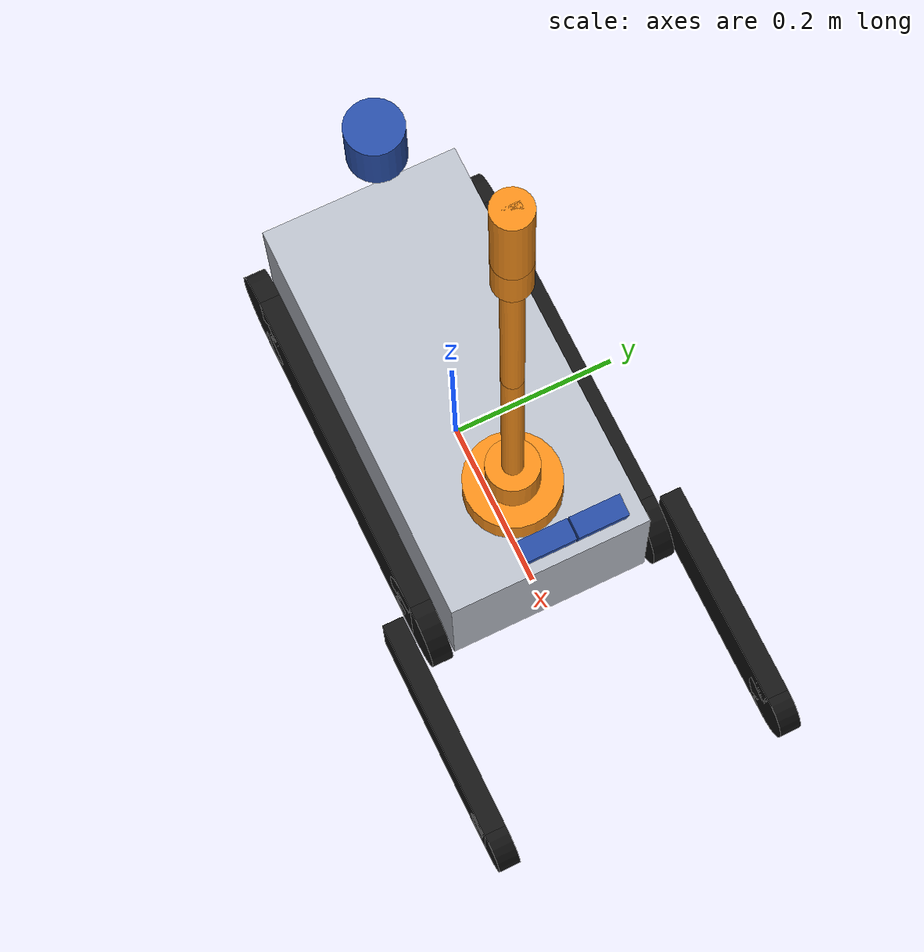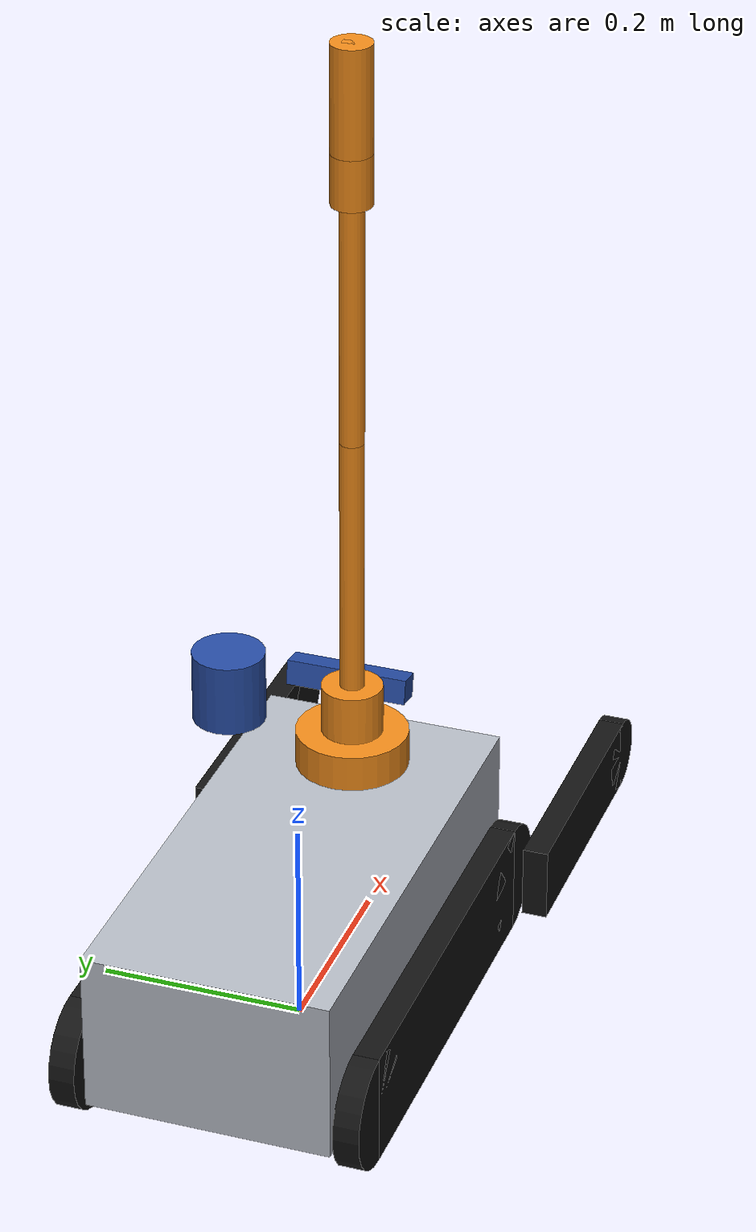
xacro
<?xml version="1.0"?>
<robot name="carpincho" xmlns:xacro="http://www.ros.org/wiki/xacro">
  <xacro:include filename="$(find carpincho_description)/urdf/carpincho_params.xacro"/>
  <xacro:arg name="with_arm" default="true"/>

  <xacro:property name="PI" value="3.14159265359"/>
  <xacro:property name="deck_top" value="${body_top_z + deck_t}"/>

  <material name="aluminio"><color rgba="0.72 0.74 0.78 1"/></material>
  <material name="oruga"><color rgba="0.08 0.08 0.08 1"/></material>
  <material name="naranja"><color rgba="0.95 0.55 0.10 1"/></material>
  <material name="sensor"><color rgba="0.15 0.30 0.65 1"/></material>

  <xacro:macro name="box_inertia" params="m x y z">
    <inertia ixx="${m*(y*y+z*z)/12}" iyy="${m*(x*x+z*z)/12}" izz="${m*(x*x+y*y)/12}" ixy="0" ixz="0" iyz="0"/>
  </xacro:macro>

  <link name="base_footprint"/>

  <link name="base_link">
    <visual>
      <origin xyz="0 0 ${(body_bottom_z + body_top_z)/2 - axle_z}"/>
      <geometry><box size="${body_len} ${body_w} ${body_top_z - body_bottom_z}"/></geometry>
      <material name="aluminio"/>
    </visual>
    <collision>
      <origin xyz="0 0 ${(body_bottom_z + body_top_z)/2 - axle_z}"/>
      <geometry><box size="${body_len} ${body_w} ${body_top_z - body_bottom_z}"/></geometry>
    </collision>
    <inertial>
      <origin xyz="${cg_x} ${cg_y} ${cg_z - axle_z}"/>
      <mass value="${mass_total}"/>
      <xacro:box_inertia m="${mass_total}" x="${body_len}" y="${body_w}" z="0.2"/>
    </inertial>
  </link>
  <joint name="base_joint" type="fixed">
    <parent link="base_footprint"/><child link="base_link"/>
    <origin xyz="0 0 ${axle_z}"/>
  </joint>

  <!-- orugas principales (visual: caja + 2 cilindros) -->
  <xacro:macro name="track" params="side sign">
    <link name="track_${side}_link">
      <visual>
        <geometry><box size="${axle_dist} ${track_w} ${track_pd + 2*grouser_h}"/></geometry>
        <material name="oruga"/>
      </visual>
      <visual>
        <origin xyz="${axle_dist/2} 0 0" rpy="${PI/2} 0 0"/>
        <geometry><cylinder radius="${track_pd/2 + grouser_h}" length="${track_w}"/></geometry>
        <material name="oruga"/>
      </visual>
      <visual>
        <origin xyz="${-axle_dist/2} 0 0" rpy="${PI/2} 0 0"/>
        <geometry><cylinder radius="${track_pd/2 + grouser_h}" length="${track_w}"/></geometry>
        <material name="oruga"/>
      </visual>
      <collision>
        <geometry><box size="${axle_dist + track_pd} ${track_w} ${track_pd + 2*grouser_h}"/></geometry>
      </collision>
    </link>
    <joint name="track_${side}_joint" type="fixed">
      <parent link="base_link"/><child link="track_${side}_link"/>
      <origin xyz="0 ${sign*track_y} 0"/>
    </joint>
  </xacro:macro>
  <xacro:track side="left" sign="1"/>
  <xacro:track side="right" sign="-1"/>

  <!-- flippers: un solo grado de libertad (tubo común). 0 rad = horizontal hacia adelante,
       positivo = punta hacia ARRIBA (por eso el eje es -Y) -->
  <link name="flipper_link"/>
  <joint name="flipper_joint" type="revolute">
    <parent link="base_link"/><child link="flipper_link"/>
    <origin xyz="${axle_dist/2} 0 0"/>
    <axis xyz="0 -1 0"/>
    <limit lower="${flip_min}" upper="${flip_max}" effort="30" velocity="1.5"/>
  </joint>
  <xacro:macro name="flipper" params="side sign">
    <link name="flipper_${side}_link">
      <visual>
        <origin xyz="${flip_len/2} 0 0"/>
        <geometry><box size="${flip_len} ${track_w} ${flip_tip_pd + 2*grouser_h}"/></geometry>
        <material name="oruga"/>
      </visual>
      <visual>
        <origin xyz="${flip_len} 0 0" rpy="${PI/2} 0 0"/>
        <geometry><cylinder radius="${flip_tip_pd/2 + grouser_h}" length="${track_w}"/></geometry>
        <material name="oruga"/>
      </visual>
      <collision>
        <origin xyz="${flip_len/2} 0 0"/>
        <geometry><box size="${flip_len} ${track_w} ${flip_tip_pd + 2*grouser_h}"/></geometry>
      </collision>
      <inertial>
        <origin xyz="${flip_len/2} 0 0"/><mass value="0.6"/>
        <xacro:box_inertia m="0.6" x="${flip_len}" y="${track_w}" z="0.06"/>
      </inertial>
    </link>
    <joint name="flipper_${side}_fixed" type="fixed">
      <parent link="flipper_link"/><child link="flipper_${side}_link"/>
      <origin xyz="0 ${sign*flip_y} 0"/>
    </joint>
  </xacro:macro>
  <xacro:flipper side="left" sign="1"/>
  <xacro:flipper side="right" sign="-1"/>

  <!-- IMU (BNO055 en la placa base, sobre la bandeja). Ajustar rpy al montaje real. -->
  <link name="imu_link"/>
  <joint name="imu_joint" type="fixed">
    <parent link="base_link"/><child link="imu_link"/>
    <origin xyz="-0.105 0.062 ${0.142 - axle_z}" rpy="0 0 0"/>
  </joint>

  <!-- LiDAR 3D Livox Mid-360 (frame del driver: livox_frame) -->
  <link name="livox_frame">
    <visual>
      <origin xyz="0 0 0.0325"/>
      <geometry><cylinder radius="0.0325" length="0.065"/></geometry>
      <material name="sensor"/>
    </visual>
  </link>
  <joint name="livox_joint" type="fixed">
    <parent link="base_link"/><child link="livox_frame"/>
    <origin xyz="${lidar_x} ${lidar_y} ${lidar_z + 0.047 - axle_z}"/>
  </joint>

  <!-- cámaras: link físico (X adelante) + frame óptico (Z adelante, X derecha) -->
  <xacro:macro name="camera" params="name x y z yaw:=0 pitch:=0">
    <link name="${name}_link">
      <visual><geometry><box size="0.025 0.06 0.025"/></geometry><material name="sensor"/></visual>
    </link>
    <joint name="${name}_joint" type="fixed">
      <parent link="base_link"/><child link="${name}_link"/>
      <origin xyz="${x} ${y} ${z - axle_z}" rpy="0 ${pitch} ${yaw}"/>
    </joint>
    <link name="${name}_optical_frame"/>
    <joint name="${name}_optical_joint" type="fixed">
      <parent link="${name}_link"/><child link="${name}_optical_frame"/>
      <origin rpy="${-PI/2} 0 ${-PI/2}"/>
    </joint>
  </xacro:macro>
  <xacro:camera name="depth_cam" x="${depth_x}" y="${depth_y}" z="${depth_z}" pitch="0.17"/>
  <xacro:camera name="thermal" x="${thermal_x}" y="${thermal_y}" z="${thermal_z}" pitch="0.17"/>
  <xacro:camera name="cam_front" x="${cam_front_x}" y="0" z="${cam_front_z}"/>
  <xacro:camera name="cam_rear" x="${cam_rear_x}" y="0" z="${cam_rear_z}" yaw="${PI}"/>

  <!-- brazo C1 -->
  <xacro:if value="$(arg with_arm)">
    <link name="arm_base_link">
      <visual>
        <origin xyz="0 0 0.018"/>
        <geometry><cylinder radius="0.055" length="0.036"/></geometry>
        <material name="naranja"/>
      </visual>
    </link>
    <joint name="arm_base_joint" type="fixed">
      <parent link="base_link"/><child link="arm_base_link"/>
      <origin xyz="${arm_x} 0 ${deck_top - axle_z}"/>
    </joint>
    <xacro:macro name="arm_link" params="n length radius:=0.012">
      <link name="arm_link${n}">
        <visual>
          <origin xyz="0 0 ${length/2}"/>
          <geometry><cylinder radius="${radius}" length="${length}"/></geometry>
          <material name="naranja"/>
        </visual>
        <collision>
          <origin xyz="0 0 ${length/2}"/>
          <geometry><cylinder radius="${radius + 0.01}" length="${length}"/></geometry>
        </collision>
        <inertial>
          <origin xyz="0 0 ${length/2}"/><mass value="0.25"/>
          <inertia ixx="${0.25*length*length/12}" iyy="${0.25*length*length/12}" izz="0.0001" ixy="0" ixz="0" iyz="0"/>
        </inertial>
      </link>
    </xacro:macro>
    <xacro:arm_link n="1" length="${arm_base_h}" radius="0.03"/>
    <xacro:arm_link n="2" length="${arm_l1}"/>
    <xacro:arm_link n="3" length="${arm_l2}"/>
    <xacro:arm_link n="4" length="0.05" radius="0.02"/>
    <xacro:arm_link n="5" length="${arm_l3 - 0.05}" radius="0.02"/>
    <joint name="arm_j1" type="revolute">
      <parent link="arm_base_link"/><child link="arm_link1"/>
      <axis xyz="0 0 1"/><limit lower="-2.967" upper="2.967" effort="2.9" velocity="2.0"/>
    </joint>
    <joint name="arm_j2" type="revolute">
      <parent link="arm_link1"/><child link="arm_link2"/>
      <origin xyz="0 0 ${arm_base_h}"/>
      <axis xyz="0 1 0"/><limit lower="-1.571" upper="1.484" effort="11.6" velocity="1.2"/>
    </joint>
    <joint name="arm_j3" type="revolute">
      <parent link="arm_link2"/><child link="arm_link3"/>
      <origin xyz="0 0 ${arm_l1}"/>
      <axis xyz="0 1 0"/><limit lower="-0.087" upper="2.443" effort="5.8" velocity="1.2"/>
    </joint>
    <joint name="arm_j4" type="revolute">
      <parent link="arm_link3"/><child link="arm_link4"/>
      <origin xyz="0 0 ${arm_l2}"/>
      <axis xyz="0 1 0"/><limit lower="-1.745" upper="1.745" effort="2.9" velocity="2.0"/>
    </joint>
    <joint name="arm_j5" type="revolute">
      <parent link="arm_link4"/><child link="arm_link5"/>
      <origin xyz="0 0 0.05"/>
      <axis xyz="0 0 1"/><limit lower="-3.1" upper="3.1" effort="2.9" velocity="2.0"/>
    </joint>
    <link name="tool_tip"/>
    <joint name="tool_tip_joint" type="fixed">
      <parent link="arm_link5"/><child link="tool_tip"/>
      <origin xyz="0 0 ${arm_l3 - 0.05}"/>
    </joint>
    <!-- dedo de la pinza (equivalente prismático: 0 cerrada .. 0.0525 abierta) -->
    <link name="gripper_finger_link">
      <visual><origin xyz="0 0 -0.04"/><geometry><box size="0.008 0.018 0.08"/></geometry><material name="naranja"/></visual>
    </link>
    <joint name="gripper_joint" type="prismatic">
      <parent link="arm_link5"/><child link="gripper_finger_link"/>
      <origin xyz="0 0 ${arm_l3 - 0.05}"/>
      <axis xyz="1 0 0"/><limit lower="0" upper="0.0525" effort="20" velocity="0.1"/>
    </joint>
    <link name="gripper_cam_link"/>
    <joint name="gripper_cam_joint" type="fixed">
      <parent link="arm_link5"/><child link="gripper_cam_link"/>
      <origin xyz="-0.032 0 0.02" rpy="0 ${-PI/2} 0"/>
    </joint>
    <link name="gripper_cam_optical_frame"/>
    <joint name="gripper_cam_optical_joint" type="fixed">
      <parent link="gripper_cam_link"/><child link="gripper_cam_optical_frame"/>
      <origin rpy="${-PI/2} 0 ${-PI/2}"/>
    </joint>
  </xacro:if>
</robot>

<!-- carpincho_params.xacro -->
<!-- GENERADO por cad/build.py a partir de cad/carpincho_cad/params.py. No editar a mano. Unidades SI (m, kg, rad). -->
<robot xmlns:xacro="http://www.ros.org/wiki/xacro">
  <xacro:property name="axle_dist" value="0.4000"/>
  <xacro:property name="axle_z" value="0.0584"/>
  <xacro:property name="track_pd" value="0.0955"/>
  <xacro:property name="track_w" value="0.0250"/>
  <xacro:property name="track_y" value="0.1375"/>
  <xacro:property name="flip_y" value="0.1715"/>
  <xacro:property name="flip_len" value="0.2593"/>
  <xacro:property name="flip_tip_pd" value="0.0573"/>
  <xacro:property name="body_len" value="0.4900"/>
  <xacro:property name="body_w" value="0.2380"/>
  <xacro:property name="body_bottom_z" value="0.0300"/>
  <xacro:property name="body_top_z" value="0.1900"/>
  <xacro:property name="deck_t" value="0.0040"/>
  <xacro:property name="grouser_h" value="0.0080"/>
  <xacro:property name="mass_total" value="16.503"/>
  <xacro:property name="cg_x" value="0.0292"/>
  <xacro:property name="cg_y" value="0.0010"/>
  <xacro:property name="cg_z" value="0.1131"/>
  <xacro:property name="arm_x" value="0.1500"/>
  <xacro:property name="arm_base_h" value="0.0850"/>
  <xacro:property name="arm_l1" value="0.2600"/>
  <xacro:property name="arm_l2" value="0.2400"/>
  <xacro:property name="arm_l3" value="0.1550"/>
  <xacro:property name="lidar_x" value="-0.1700"/>
  <xacro:property name="lidar_y" value="0.0000"/>
  <xacro:property name="lidar_z" value="0.3800"/>
  <xacro:property name="depth_x" value="0.2300"/>
  <xacro:property name="depth_y" value="0.0000"/>
  <xacro:property name="depth_z" value="0.2350"/>
  <xacro:property name="thermal_x" value="0.2300"/>
  <xacro:property name="thermal_y" value="0.0620"/>
  <xacro:property name="thermal_z" value="0.2350"/>
  <xacro:property name="cam_front_x" value="0.2300"/>
  <xacro:property name="cam_front_z" value="0.1650"/>
  <xacro:property name="cam_rear_x" value="-0.2300"/>
  <xacro:property name="cam_rear_z" value="0.1650"/>
  <xacro:property name="flip_min" value="-1.7453"/>
  <xacro:property name="flip_max" value="3.3161"/>
</robot>
